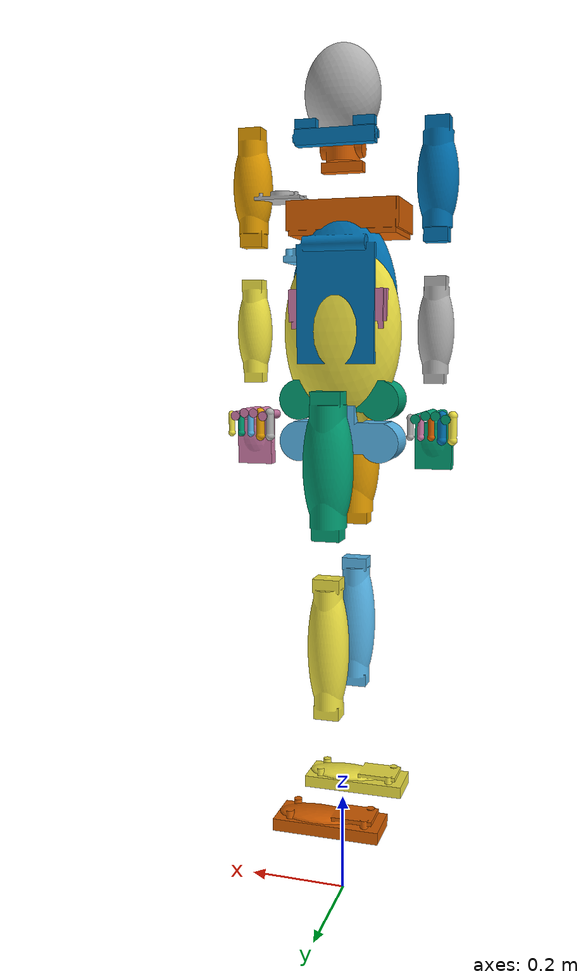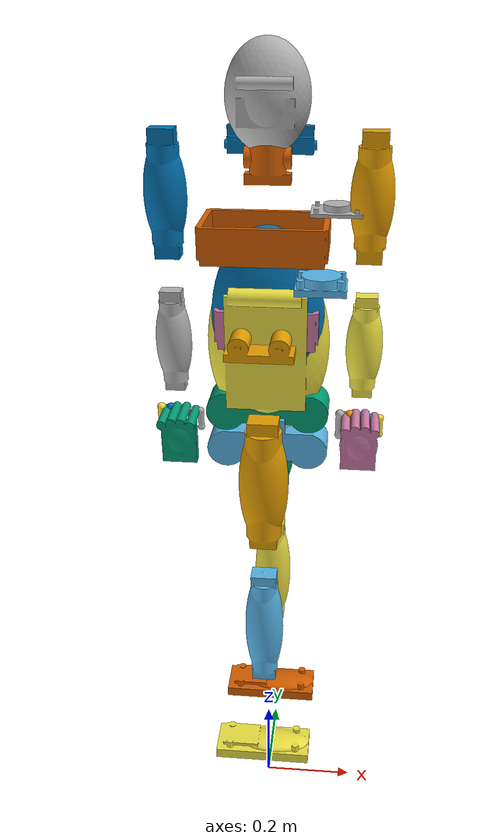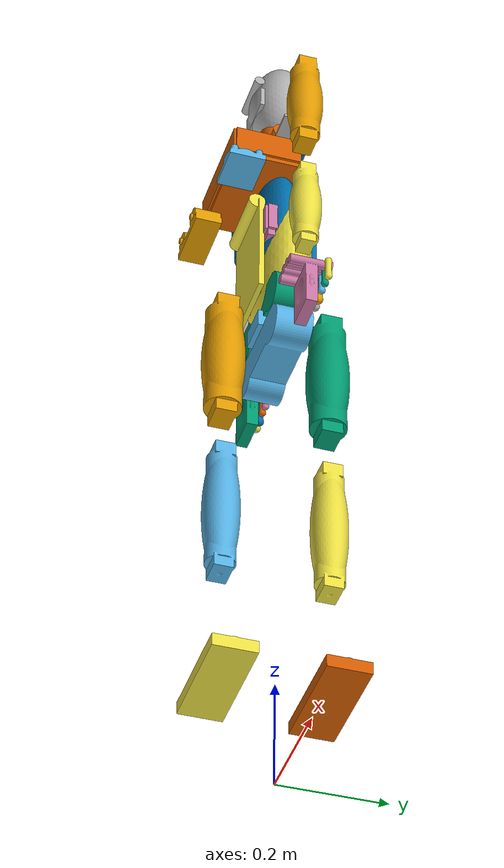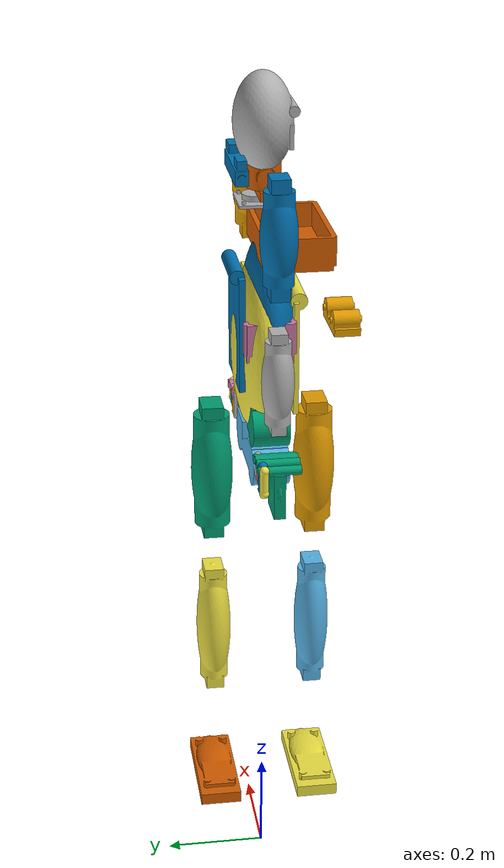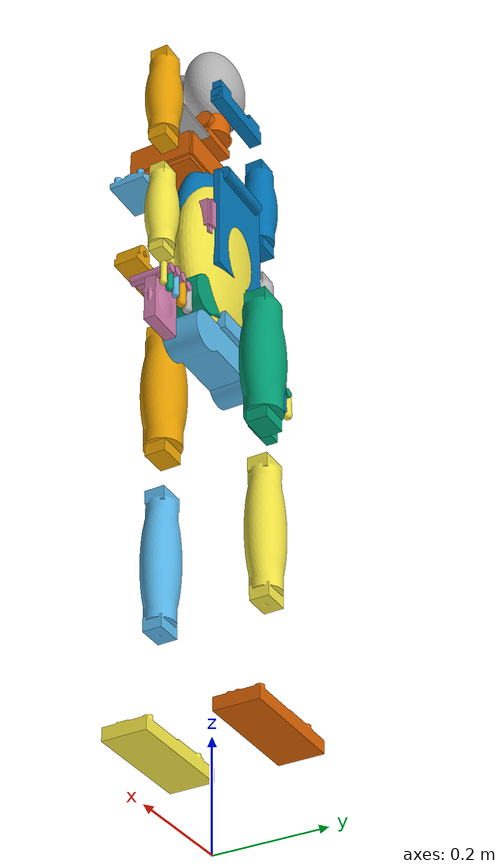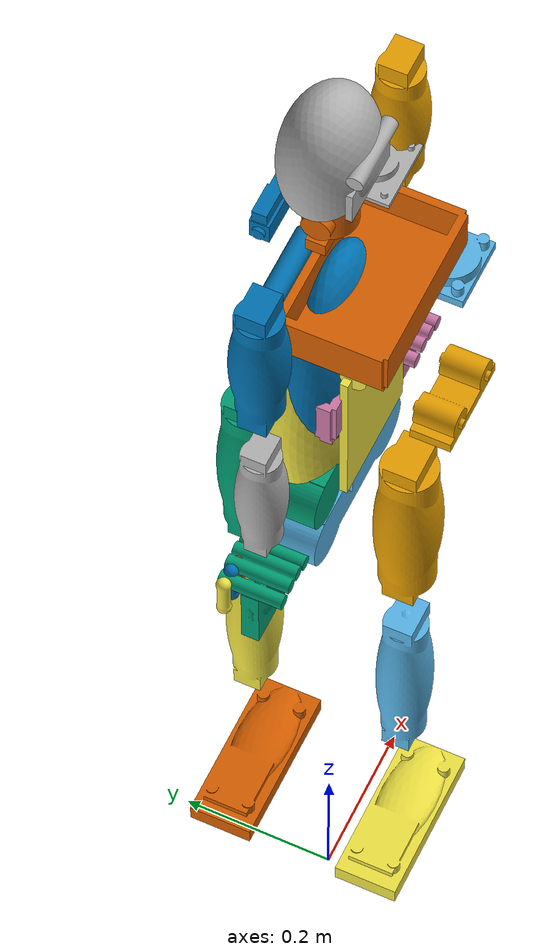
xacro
<?xml version="1.0"?>
<robot name="robotrola_r01" xmlns:xacro="http://www.ros.org/wiki/xacro">
  <xacro:property name="mesh_prefix" value="package://robotrola_description/meshes" />
  <!-- Robotrola R-01 full-body research description: 42 revolute DOF -->
  <!-- Inertial blocks are ESTIMATED (engineering placeholders), not measured hardware. -->
  <link name="base_link">
    <!-- ESTIMATED inertia (not measured hardware) -->
    <inertial>
      <origin xyz="0 0 0" rpy="0 0 0"/>
      <mass value="0.01"/>
      <inertia ixx="1e-05" ixy="0" ixz="0" iyy="1e-05" iyz="0" izz="1e-05"/>
    </inertial>
  </link>
  <link name="pelvis_link">
    <!-- ESTIMATED inertia (not measured hardware) -->
    <inertial>
      <origin xyz="0 0 0" rpy="0 0 0"/>
      <mass value="8.0"/>
      <inertia ixx="0.08" ixy="0" ixz="0" iyy="0.06" iyz="0" izz="0.05"/>
    </inertial>
    <visual><geometry><mesh filename="${mesh_prefix}/pelvis_frame.stl" scale="0.001 0.001 0.001"/></geometry></visual>
    <collision><geometry><box size="0.25 0.2 0.12"/></geometry></collision>
  </link>
  <joint name="base_to_pelvis" type="fixed">
    <parent link="base_link"/><child link="pelvis_link"/>
    <origin xyz="0 0 0.95" rpy="0 0 0"/>
  </joint>
  <link name="waist_link">
    <!-- ESTIMATED inertia (not measured hardware) -->
    <inertial>
      <origin xyz="0 0 0" rpy="0 0 0"/>
      <mass value="2.5"/>
      <inertia ixx="0.02" ixy="0" ixz="0" iyy="0.015" iyz="0" izz="0.012"/>
    </inertial>
    <visual><geometry><mesh filename="${mesh_prefix}/pelvis_frame.stl" scale="0.001 0.001 0.001"/></geometry></visual>
    <collision><geometry><cylinder radius="0.04" length="0.08"/></geometry></collision>
  </link>
  <joint name="waist_yaw" type="revolute">
    <parent link="pelvis_link"/><child link="waist_link"/>
    <origin xyz="0 0 0.08" rpy="0 0 0"/>
    <axis xyz="0 0 1"/>
    <limit lower="-0.6" upper="0.6" effort="2.0" velocity="0.2"/>
  </joint>
  <link name="torso_link">
    <!-- ESTIMATED inertia (not measured hardware) -->
    <inertial>
      <origin xyz="0 0 0" rpy="0 0 0"/>
      <mass value="6.0"/>
      <inertia ixx="0.1" ixy="0" ixz="0" iyy="0.08" iyz="0" izz="0.05"/>
    </inertial>
    <visual><geometry><mesh filename="${mesh_prefix}/torso_front_shell.stl" scale="0.001 0.001 0.001"/></geometry></visual>
    <collision><geometry><cylinder radius="0.04" length="0.08"/></geometry></collision>
  </link>
  <joint name="waist_pitch" type="revolute">
    <parent link="waist_link"/><child link="torso_link"/>
    <origin xyz="0 0 0.12" rpy="0 0 0"/>
    <axis xyz="0 1 0"/>
    <limit lower="-0.35" upper="0.45" effort="2.5" velocity="0.2"/>
  </joint>
  <link name="torso_roll_link">
    <!-- ESTIMATED inertia (not measured hardware) -->
    <inertial>
      <origin xyz="0 0 0" rpy="0 0 0"/>
      <mass value="6.0"/>
      <inertia ixx="0.1" ixy="0" ixz="0" iyy="0.08" iyz="0" izz="0.05"/>
    </inertial>
    <visual><geometry><mesh filename="${mesh_prefix}/torso_back_shell.stl" scale="0.001 0.001 0.001"/></geometry></visual>
    <collision><geometry><cylinder radius="0.04" length="0.08"/></geometry></collision>
  </link>
  <joint name="waist_roll" type="revolute">
    <parent link="torso_link"/><child link="torso_roll_link"/>
    <origin xyz="0 0 0.05" rpy="0 0 0"/>
    <axis xyz="1 0 0"/>
    <limit lower="-0.3" upper="0.3" effort="1.5" velocity="0.2"/>
  </joint>
  <link name="neck_yaw_link">
    <!-- ESTIMATED inertia (not measured hardware) -->
    <inertial>
      <origin xyz="0 0 0" rpy="0 0 0"/>
      <mass value="0.4"/>
      <inertia ixx="0.001" ixy="0" ixz="0" iyy="0.001" iyz="0" izz="0.0008"/>
    </inertial>
    <visual><geometry><mesh filename="${mesh_prefix}/neck_gimbal_mount.stl" scale="0.001 0.001 0.001"/></geometry></visual>
    <collision><geometry><cylinder radius="0.04" length="0.08"/></geometry></collision>
  </link>
  <joint name="neck_yaw" type="revolute">
    <parent link="torso_roll_link"/><child link="neck_yaw_link"/>
    <origin xyz="0 0 0.28" rpy="0 0 0"/>
    <axis xyz="0 0 1"/>
    <limit lower="-0.9" upper="0.9" effort="0.5" velocity="0.25"/>
  </joint>
  <link name="neck_pitch_link">
    <!-- ESTIMATED inertia (not measured hardware) -->
    <inertial>
      <origin xyz="0 0 0" rpy="0 0 0"/>
      <mass value="0.4"/>
      <inertia ixx="0.001" ixy="0" ixz="0" iyy="0.001" iyz="0" izz="0.0008"/>
    </inertial>
  </link>
  <joint name="neck_pitch" type="revolute">
    <parent link="neck_yaw_link"/><child link="neck_pitch_link"/>
    <origin xyz="0 0 0.04" rpy="0 0 0"/>
    <axis xyz="0 1 0"/>
    <limit lower="-0.5" upper="0.6" effort="0.5" velocity="0.25"/>
  </joint>
  <link name="head_link">
    <!-- ESTIMATED inertia (not measured hardware) -->
    <inertial>
      <origin xyz="0 0 0" rpy="0 0 0"/>
      <mass value="1.2"/>
      <inertia ixx="0.008" ixy="0" ixz="0" iyy="0.008" iyz="0" izz="0.006"/>
    </inertial>
    <visual><geometry><mesh filename="${mesh_prefix}/head_shell_front.stl" scale="0.001 0.001 0.001"/></geometry></visual>
    <collision><geometry><cylinder radius="0.04" length="0.08"/></geometry></collision>
  </link>
  <joint name="neck_roll" type="revolute">
    <parent link="neck_pitch_link"/><child link="head_link"/>
    <origin xyz="0 0 0.06" rpy="0 0 0"/>
    <axis xyz="1 0 0"/>
    <limit lower="-0.35" upper="0.35" effort="0.4" velocity="0.2"/>
  </joint>
  <link name="left_shoulder_pitch_link">
    <!-- ESTIMATED inertia (not measured hardware) -->
    <inertial>
      <origin xyz="0 0 0" rpy="0 0 0"/>
      <mass value="1.8"/>
      <inertia ixx="0.012" ixy="0" ixz="0" iyy="0.012" iyz="0" izz="0.004"/>
    </inertial>
    <visual><geometry><mesh filename="${mesh_prefix}/upper_arm_shell.stl" scale="0.001 0.001 0.001"/></geometry></visual>
    <collision><geometry><cylinder radius="0.04" length="0.08"/></geometry></collision>
  </link>
  <joint name="left_shoulder_pitch" type="revolute">
    <parent link="torso_roll_link"/><child link="left_shoulder_pitch_link"/>
    <origin xyz="0.18 0 0.22" rpy="0 0 0"/>
    <axis xyz="0 1 0"/>
    <limit lower="-1.4" upper="1.4" effort="1.5" velocity="0.25"/>
  </joint>
  <link name="left_shoulder_roll_link">
    <!-- ESTIMATED inertia (not measured hardware) -->
    <inertial>
      <origin xyz="0 0 0" rpy="0 0 0"/>
      <mass value="1.8"/>
      <inertia ixx="0.012" ixy="0" ixz="0" iyy="0.012" iyz="0" izz="0.004"/>
    </inertial>
  </link>
  <joint name="left_shoulder_roll" type="revolute">
    <parent link="left_shoulder_pitch_link"/><child link="left_shoulder_roll_link"/>
    <origin xyz="0 0 0" rpy="0 0 0"/>
    <axis xyz="1 0 0"/>
    <limit lower="-0.3" upper="1.5" effort="1.2" velocity="0.25"/>
  </joint>
  <link name="left_upper_arm_link">
    <!-- ESTIMATED inertia (not measured hardware) -->
    <inertial>
      <origin xyz="0 0 0" rpy="0 0 0"/>
      <mass value="1.8"/>
      <inertia ixx="0.012" ixy="0" ixz="0" iyy="0.012" iyz="0" izz="0.004"/>
    </inertial>
  </link>
  <joint name="left_shoulder_yaw" type="revolute">
    <parent link="left_shoulder_roll_link"/><child link="left_upper_arm_link"/>
    <origin xyz="0 0 -0.05" rpy="0 0 0"/>
    <axis xyz="0 0 1"/>
    <limit lower="-1.2" upper="1.2" effort="1.0" velocity="0.3"/>
  </joint>
  <link name="left_forearm_link">
    <!-- ESTIMATED inertia (not measured hardware) -->
    <inertial>
      <origin xyz="0 0 0" rpy="0 0 0"/>
      <mass value="1.0"/>
      <inertia ixx="0.006" ixy="0" ixz="0" iyy="0.006" iyz="0" izz="0.002"/>
    </inertial>
    <visual><geometry><mesh filename="${mesh_prefix}/forearm_shell.stl" scale="0.001 0.001 0.001"/></geometry></visual>
    <collision><geometry><cylinder radius="0.04" length="0.08"/></geometry></collision>
  </link>
  <joint name="left_elbow" type="revolute">
    <parent link="left_upper_arm_link"/><child link="left_forearm_link"/>
    <origin xyz="0 0 -0.22" rpy="0 0 0"/>
    <axis xyz="0 1 0"/>
    <limit lower="0.0" upper="2.2" effort="1.0" velocity="0.3"/>
  </joint>
  <link name="left_wrist_yaw_link">
    <!-- ESTIMATED inertia (not measured hardware) -->
    <inertial>
      <origin xyz="0 0 0" rpy="0 0 0"/>
      <mass value="0.25"/>
      <inertia ixx="0.0004" ixy="0" ixz="0" iyy="0.0004" iyz="0" izz="0.0002"/>
    </inertial>
  </link>
  <joint name="left_wrist_yaw" type="revolute">
    <parent link="left_forearm_link"/><child link="left_wrist_yaw_link"/>
    <origin xyz="0 0 -0.2" rpy="0 0 0"/>
    <axis xyz="0 0 1"/>
    <limit lower="-1.4" upper="1.4" effort="0.4" velocity="0.4"/>
  </joint>
  <link name="left_wrist_pitch_link">
    <!-- ESTIMATED inertia (not measured hardware) -->
    <inertial>
      <origin xyz="0 0 0" rpy="0 0 0"/>
      <mass value="0.25"/>
      <inertia ixx="0.0004" ixy="0" ixz="0" iyy="0.0004" iyz="0" izz="0.0002"/>
    </inertial>
  </link>
  <joint name="left_wrist_pitch" type="revolute">
    <parent link="left_wrist_yaw_link"/><child link="left_wrist_pitch_link"/>
    <origin xyz="0 0 0" rpy="0 0 0"/>
    <axis xyz="0 1 0"/>
    <limit lower="-0.9" upper="0.9" effort="0.4" velocity="0.4"/>
  </joint>
  <link name="left_hand_link">
    <!-- ESTIMATED inertia (not measured hardware) -->
    <inertial>
      <origin xyz="0 0 0" rpy="0 0 0"/>
      <mass value="0.35"/>
      <inertia ixx="0.0008" ixy="0" ixz="0" iyy="0.0008" iyz="0" izz="0.0004"/>
    </inertial>
    <visual><geometry><mesh filename="${mesh_prefix}/hand_palm.stl" scale="0.001 0.001 0.001"/></geometry></visual>
    <collision><geometry><cylinder radius="0.04" length="0.08"/></geometry></collision>
  </link>
  <joint name="left_wrist_roll" type="revolute">
    <parent link="left_wrist_pitch_link"/><child link="left_hand_link"/>
    <origin xyz="0 0 0" rpy="0 0 0"/>
    <axis xyz="1 0 0"/>
    <limit lower="-0.9" upper="0.9" effort="0.3" velocity="0.4"/>
  </joint>
  <link name="left_thumb_link">
    <!-- ESTIMATED inertia (not measured hardware) -->
    <inertial>
      <origin xyz="0 0 0" rpy="0 0 0"/>
      <mass value="0.05"/>
      <inertia ixx="5e-05" ixy="0" ixz="0" iyy="5e-05" iyz="0" izz="2e-05"/>
    </inertial>
    <visual><geometry><mesh filename="${mesh_prefix}/finger_phalanx_proximal.stl" scale="0.001 0.001 0.001"/></geometry></visual>
    <collision><geometry><cylinder radius="0.04" length="0.08"/></geometry></collision>
  </link>
  <joint name="left_thumb_curl" type="revolute">
    <parent link="left_hand_link"/><child link="left_thumb_link"/>
    <origin xyz="-0.04 0.03 0.02" rpy="0 0 0"/>
    <axis xyz="0 1 0"/>
    <limit lower="0.0" upper="1.4" effort="0.15" velocity="0.5"/>
  </joint>
  <link name="left_index_link">
    <!-- ESTIMATED inertia (not measured hardware) -->
    <inertial>
      <origin xyz="0 0 0" rpy="0 0 0"/>
      <mass value="0.05"/>
      <inertia ixx="5e-05" ixy="0" ixz="0" iyy="5e-05" iyz="0" izz="2e-05"/>
    </inertial>
    <visual><geometry><mesh filename="${mesh_prefix}/finger_phalanx_proximal.stl" scale="0.001 0.001 0.001"/></geometry></visual>
    <collision><geometry><cylinder radius="0.04" length="0.08"/></geometry></collision>
  </link>
  <joint name="left_index_curl" type="revolute">
    <parent link="left_hand_link"/><child link="left_index_link"/>
    <origin xyz="-0.02 0.03 0.02" rpy="0 0 0"/>
    <axis xyz="0 1 0"/>
    <limit lower="0.0" upper="1.4" effort="0.15" velocity="0.5"/>
  </joint>
  <link name="left_middle_link">
    <!-- ESTIMATED inertia (not measured hardware) -->
    <inertial>
      <origin xyz="0 0 0" rpy="0 0 0"/>
      <mass value="0.05"/>
      <inertia ixx="5e-05" ixy="0" ixz="0" iyy="5e-05" iyz="0" izz="2e-05"/>
    </inertial>
    <visual><geometry><mesh filename="${mesh_prefix}/finger_phalanx_distal.stl" scale="0.001 0.001 0.001"/></geometry></visual>
    <collision><geometry><cylinder radius="0.04" length="0.08"/></geometry></collision>
  </link>
  <joint name="left_middle_curl" type="revolute">
    <parent link="left_hand_link"/><child link="left_middle_link"/>
    <origin xyz="0.0 0.03 0.02" rpy="0 0 0"/>
    <axis xyz="0 1 0"/>
    <limit lower="0.0" upper="1.4" effort="0.15" velocity="0.5"/>
  </joint>
  <link name="left_ring_link">
    <!-- ESTIMATED inertia (not measured hardware) -->
    <inertial>
      <origin xyz="0 0 0" rpy="0 0 0"/>
      <mass value="0.05"/>
      <inertia ixx="5e-05" ixy="0" ixz="0" iyy="5e-05" iyz="0" izz="2e-05"/>
    </inertial>
    <visual><geometry><mesh filename="${mesh_prefix}/finger_phalanx_distal.stl" scale="0.001 0.001 0.001"/></geometry></visual>
    <collision><geometry><cylinder radius="0.04" length="0.08"/></geometry></collision>
  </link>
  <joint name="left_ring_curl" type="revolute">
    <parent link="left_hand_link"/><child link="left_ring_link"/>
    <origin xyz="0.02 0.03 0.02" rpy="0 0 0"/>
    <axis xyz="0 1 0"/>
    <limit lower="0.0" upper="1.4" effort="0.15" velocity="0.5"/>
  </joint>
  <link name="left_pinky_link">
    <!-- ESTIMATED inertia (not measured hardware) -->
    <inertial>
      <origin xyz="0 0 0" rpy="0 0 0"/>
      <mass value="0.05"/>
      <inertia ixx="5e-05" ixy="0" ixz="0" iyy="5e-05" iyz="0" izz="2e-05"/>
    </inertial>
    <visual><geometry><mesh filename="${mesh_prefix}/finger_phalanx_distal.stl" scale="0.001 0.001 0.001"/></geometry></visual>
    <collision><geometry><cylinder radius="0.04" length="0.08"/></geometry></collision>
  </link>
  <joint name="left_pinky_curl" type="revolute">
    <parent link="left_hand_link"/><child link="left_pinky_link"/>
    <origin xyz="0.04 0.03 0.02" rpy="0 0 0"/>
    <axis xyz="0 1 0"/>
    <limit lower="0.0" upper="1.4" effort="0.15" velocity="0.5"/>
  </joint>
  <link name="right_shoulder_pitch_link">
    <!-- ESTIMATED inertia (not measured hardware) -->
    <inertial>
      <origin xyz="0 0 0" rpy="0 0 0"/>
      <mass value="1.8"/>
      <inertia ixx="0.012" ixy="0" ixz="0" iyy="0.012" iyz="0" izz="0.004"/>
    </inertial>
    <visual><geometry><mesh filename="${mesh_prefix}/upper_arm_shell.stl" scale="0.001 0.001 0.001"/></geometry></visual>
    <collision><geometry><cylinder radius="0.04" length="0.08"/></geometry></collision>
  </link>
  <joint name="right_shoulder_pitch" type="revolute">
    <parent link="torso_roll_link"/><child link="right_shoulder_pitch_link"/>
    <origin xyz="-0.18 0 0.22" rpy="0 0 0"/>
    <axis xyz="0 1 0"/>
    <limit lower="-1.4" upper="1.4" effort="1.5" velocity="0.25"/>
  </joint>
  <link name="right_shoulder_roll_link">
    <!-- ESTIMATED inertia (not measured hardware) -->
    <inertial>
      <origin xyz="0 0 0" rpy="0 0 0"/>
      <mass value="1.8"/>
      <inertia ixx="0.012" ixy="0" ixz="0" iyy="0.012" iyz="0" izz="0.004"/>
    </inertial>
  </link>
  <joint name="right_shoulder_roll" type="revolute">
    <parent link="right_shoulder_pitch_link"/><child link="right_shoulder_roll_link"/>
    <origin xyz="0 0 0" rpy="0 0 0"/>
    <axis xyz="1 0 0"/>
    <limit lower="-1.5" upper="0.3" effort="1.2" velocity="0.25"/>
  </joint>
  <link name="right_upper_arm_link">
    <!-- ESTIMATED inertia (not measured hardware) -->
    <inertial>
      <origin xyz="0 0 0" rpy="0 0 0"/>
      <mass value="1.8"/>
      <inertia ixx="0.012" ixy="0" ixz="0" iyy="0.012" iyz="0" izz="0.004"/>
    </inertial>
  </link>
  <joint name="right_shoulder_yaw" type="revolute">
    <parent link="right_shoulder_roll_link"/><child link="right_upper_arm_link"/>
    <origin xyz="0 0 -0.05" rpy="0 0 0"/>
    <axis xyz="0 0 1"/>
    <limit lower="-1.2" upper="1.2" effort="1.0" velocity="0.3"/>
  </joint>
  <link name="right_forearm_link">
    <!-- ESTIMATED inertia (not measured hardware) -->
    <inertial>
      <origin xyz="0 0 0" rpy="0 0 0"/>
      <mass value="1.0"/>
      <inertia ixx="0.006" ixy="0" ixz="0" iyy="0.006" iyz="0" izz="0.002"/>
    </inertial>
    <visual><geometry><mesh filename="${mesh_prefix}/forearm_shell.stl" scale="0.001 0.001 0.001"/></geometry></visual>
    <collision><geometry><cylinder radius="0.04" length="0.08"/></geometry></collision>
  </link>
  <joint name="right_elbow" type="revolute">
    <parent link="right_upper_arm_link"/><child link="right_forearm_link"/>
    <origin xyz="0 0 -0.22" rpy="0 0 0"/>
    <axis xyz="0 1 0"/>
    <limit lower="0.0" upper="2.2" effort="1.0" velocity="0.3"/>
  </joint>
  <link name="right_wrist_yaw_link">
    <!-- ESTIMATED inertia (not measured hardware) -->
    <inertial>
      <origin xyz="0 0 0" rpy="0 0 0"/>
      <mass value="0.25"/>
      <inertia ixx="0.0004" ixy="0" ixz="0" iyy="0.0004" iyz="0" izz="0.0002"/>
    </inertial>
  </link>
  <joint name="right_wrist_yaw" type="revolute">
    <parent link="right_forearm_link"/><child link="right_wrist_yaw_link"/>
    <origin xyz="0 0 -0.2" rpy="0 0 0"/>
    <axis xyz="0 0 1"/>
    <limit lower="-1.4" upper="1.4" effort="0.4" velocity="0.4"/>
  </joint>
  <link name="right_wrist_pitch_link">
    <!-- ESTIMATED inertia (not measured hardware) -->
    <inertial>
      <origin xyz="0 0 0" rpy="0 0 0"/>
      <mass value="0.25"/>
      <inertia ixx="0.0004" ixy="0" ixz="0" iyy="0.0004" iyz="0" izz="0.0002"/>
    </inertial>
  </link>
  <joint name="right_wrist_pitch" type="revolute">
    <parent link="right_wrist_yaw_link"/><child link="right_wrist_pitch_link"/>
    <origin xyz="0 0 0" rpy="0 0 0"/>
    <axis xyz="0 1 0"/>
    <limit lower="-0.9" upper="0.9" effort="0.4" velocity="0.4"/>
  </joint>
  <link name="right_hand_link">
    <!-- ESTIMATED inertia (not measured hardware) -->
    <inertial>
      <origin xyz="0 0 0" rpy="0 0 0"/>
      <mass value="0.35"/>
      <inertia ixx="0.0008" ixy="0" ixz="0" iyy="0.0008" iyz="0" izz="0.0004"/>
    </inertial>
    <visual><geometry><mesh filename="${mesh_prefix}/hand_palm.stl" scale="0.001 0.001 0.001"/></geometry></visual>
    <collision><geometry><cylinder radius="0.04" length="0.08"/></geometry></collision>
  </link>
  <joint name="right_wrist_roll" type="revolute">
    <parent link="right_wrist_pitch_link"/><child link="right_hand_link"/>
    <origin xyz="0 0 0" rpy="0 0 0"/>
    <axis xyz="1 0 0"/>
    <limit lower="-0.9" upper="0.9" effort="0.3" velocity="0.4"/>
  </joint>
  <link name="right_thumb_link">
    <!-- ESTIMATED inertia (not measured hardware) -->
    <inertial>
      <origin xyz="0 0 0" rpy="0 0 0"/>
      <mass value="0.05"/>
      <inertia ixx="5e-05" ixy="0" ixz="0" iyy="5e-05" iyz="0" izz="2e-05"/>
    </inertial>
    <visual><geometry><mesh filename="${mesh_prefix}/finger_phalanx_proximal.stl" scale="0.001 0.001 0.001"/></geometry></visual>
    <collision><geometry><cylinder radius="0.04" length="0.08"/></geometry></collision>
  </link>
  <joint name="right_thumb_curl" type="revolute">
    <parent link="right_hand_link"/><child link="right_thumb_link"/>
    <origin xyz="-0.04 0.03 0.02" rpy="0 0 0"/>
    <axis xyz="0 1 0"/>
    <limit lower="0.0" upper="1.4" effort="0.15" velocity="0.5"/>
  </joint>
  <link name="right_index_link">
    <!-- ESTIMATED inertia (not measured hardware) -->
    <inertial>
      <origin xyz="0 0 0" rpy="0 0 0"/>
      <mass value="0.05"/>
      <inertia ixx="5e-05" ixy="0" ixz="0" iyy="5e-05" iyz="0" izz="2e-05"/>
    </inertial>
    <visual><geometry><mesh filename="${mesh_prefix}/finger_phalanx_proximal.stl" scale="0.001 0.001 0.001"/></geometry></visual>
    <collision><geometry><cylinder radius="0.04" length="0.08"/></geometry></collision>
  </link>
  <joint name="right_index_curl" type="revolute">
    <parent link="right_hand_link"/><child link="right_index_link"/>
    <origin xyz="-0.02 0.03 0.02" rpy="0 0 0"/>
    <axis xyz="0 1 0"/>
    <limit lower="0.0" upper="1.4" effort="0.15" velocity="0.5"/>
  </joint>
  <link name="right_middle_link">
    <!-- ESTIMATED inertia (not measured hardware) -->
    <inertial>
      <origin xyz="0 0 0" rpy="0 0 0"/>
      <mass value="0.05"/>
      <inertia ixx="5e-05" ixy="0" ixz="0" iyy="5e-05" iyz="0" izz="2e-05"/>
    </inertial>
    <visual><geometry><mesh filename="${mesh_prefix}/finger_phalanx_distal.stl" scale="0.001 0.001 0.001"/></geometry></visual>
    <collision><geometry><cylinder radius="0.04" length="0.08"/></geometry></collision>
  </link>
  <joint name="right_middle_curl" type="revolute">
    <parent link="right_hand_link"/><child link="right_middle_link"/>
    <origin xyz="0.0 0.03 0.02" rpy="0 0 0"/>
    <axis xyz="0 1 0"/>
    <limit lower="0.0" upper="1.4" effort="0.15" velocity="0.5"/>
  </joint>
  <link name="right_ring_link">
    <!-- ESTIMATED inertia (not measured hardware) -->
    <inertial>
      <origin xyz="0 0 0" rpy="0 0 0"/>
      <mass value="0.05"/>
      <inertia ixx="5e-05" ixy="0" ixz="0" iyy="5e-05" iyz="0" izz="2e-05"/>
    </inertial>
    <visual><geometry><mesh filename="${mesh_prefix}/finger_phalanx_distal.stl" scale="0.001 0.001 0.001"/></geometry></visual>
    <collision><geometry><cylinder radius="0.04" length="0.08"/></geometry></collision>
  </link>
  <joint name="right_ring_curl" type="revolute">
    <parent link="right_hand_link"/><child link="right_ring_link"/>
    <origin xyz="0.02 0.03 0.02" rpy="0 0 0"/>
    <axis xyz="0 1 0"/>
    <limit lower="0.0" upper="1.4" effort="0.15" velocity="0.5"/>
  </joint>
  <link name="right_pinky_link">
    <!-- ESTIMATED inertia (not measured hardware) -->
    <inertial>
      <origin xyz="0 0 0" rpy="0 0 0"/>
      <mass value="0.05"/>
      <inertia ixx="5e-05" ixy="0" ixz="0" iyy="5e-05" iyz="0" izz="2e-05"/>
    </inertial>
    <visual><geometry><mesh filename="${mesh_prefix}/finger_phalanx_distal.stl" scale="0.001 0.001 0.001"/></geometry></visual>
    <collision><geometry><cylinder radius="0.04" length="0.08"/></geometry></collision>
  </link>
  <joint name="right_pinky_curl" type="revolute">
    <parent link="right_hand_link"/><child link="right_pinky_link"/>
    <origin xyz="0.04 0.03 0.02" rpy="0 0 0"/>
    <axis xyz="0 1 0"/>
    <limit lower="0.0" upper="1.4" effort="0.15" velocity="0.5"/>
  </joint>
  <link name="left_hip_yaw_link">
    <!-- ESTIMATED inertia (not measured hardware) -->
    <inertial>
      <origin xyz="0 0 0" rpy="0 0 0"/>
      <mass value="1.5"/>
      <inertia ixx="0.01" ixy="0" ixz="0" iyy="0.01" iyz="0" izz="0.005"/>
    </inertial>
  </link>
  <joint name="left_hip_yaw" type="revolute">
    <parent link="pelvis_link"/><child link="left_hip_yaw_link"/>
    <origin xyz="0 0.1 -0.05" rpy="0 0 0"/>
    <axis xyz="0 0 1"/>
    <limit lower="-0.6" upper="0.6" effort="2.0" velocity="0.25"/>
  </joint>
  <link name="left_hip_roll_link">
    <!-- ESTIMATED inertia (not measured hardware) -->
    <inertial>
      <origin xyz="0 0 0" rpy="0 0 0"/>
      <mass value="1.5"/>
      <inertia ixx="0.01" ixy="0" ixz="0" iyy="0.01" iyz="0" izz="0.005"/>
    </inertial>
  </link>
  <joint name="left_hip_roll" type="revolute">
    <parent link="left_hip_yaw_link"/><child link="left_hip_roll_link"/>
    <origin xyz="0 0 0" rpy="0 0 0"/>
    <axis xyz="1 0 0"/>
    <limit lower="-0.4" upper="0.4" effort="2.0" velocity="0.25"/>
  </joint>
  <link name="left_thigh_link">
    <!-- ESTIMATED inertia (not measured hardware) -->
    <inertial>
      <origin xyz="0 0 0" rpy="0 0 0"/>
      <mass value="4.0"/>
      <inertia ixx="0.04" ixy="0" ixz="0" iyy="0.04" iyz="0" izz="0.01"/>
    </inertial>
    <visual><geometry><mesh filename="${mesh_prefix}/thigh_shell.stl" scale="0.001 0.001 0.001"/></geometry></visual>
    <collision><geometry><cylinder radius="0.04" length="0.08"/></geometry></collision>
  </link>
  <joint name="left_hip_pitch" type="revolute">
    <parent link="left_hip_roll_link"/><child link="left_thigh_link"/>
    <origin xyz="0 0 0" rpy="0 0 0"/>
    <axis xyz="0 1 0"/>
    <limit lower="-1.4" upper="0.8" effort="3.0" velocity="0.25"/>
  </joint>
  <link name="left_shin_link">
    <!-- ESTIMATED inertia (not measured hardware) -->
    <inertial>
      <origin xyz="0 0 0" rpy="0 0 0"/>
      <mass value="2.5"/>
      <inertia ixx="0.02" ixy="0" ixz="0" iyy="0.02" iyz="0" izz="0.006"/>
    </inertial>
    <visual><geometry><mesh filename="${mesh_prefix}/shin_shell.stl" scale="0.001 0.001 0.001"/></geometry></visual>
    <collision><geometry><cylinder radius="0.04" length="0.08"/></geometry></collision>
  </link>
  <joint name="left_knee" type="revolute">
    <parent link="left_thigh_link"/><child link="left_shin_link"/>
    <origin xyz="0 0 -0.35" rpy="0 0 0"/>
    <axis xyz="0 1 0"/>
    <limit lower="0.0" upper="2.2" effort="3.0" velocity="0.3"/>
  </joint>
  <link name="left_ankle_pitch_link">
    <!-- ESTIMATED inertia (not measured hardware) -->
    <inertial>
      <origin xyz="0 0 0" rpy="0 0 0"/>
      <mass value="0.4"/>
      <inertia ixx="0.001" ixy="0" ixz="0" iyy="0.001" iyz="0" izz="0.0005"/>
    </inertial>
  </link>
  <joint name="left_ankle_pitch" type="revolute">
    <parent link="left_shin_link"/><child link="left_ankle_pitch_link"/>
    <origin xyz="0 0 -0.35" rpy="0 0 0"/>
    <axis xyz="0 1 0"/>
    <limit lower="-0.7" upper="0.7" effort="1.5" velocity="0.3"/>
  </joint>
  <link name="left_foot_link">
    <!-- ESTIMATED inertia (not measured hardware) -->
    <inertial>
      <origin xyz="0 0 0" rpy="0 0 0"/>
      <mass value="0.8"/>
      <inertia ixx="0.004" ixy="0" ixz="0" iyy="0.004" iyz="0" izz="0.001"/>
    </inertial>
    <visual><geometry><mesh filename="${mesh_prefix}/foot_sole_force_sensor_mount.stl" scale="0.001 0.001 0.001"/></geometry></visual>
    <collision><geometry><cylinder radius="0.04" length="0.08"/></geometry></collision>
  </link>
  <joint name="left_ankle_roll" type="revolute">
    <parent link="left_ankle_pitch_link"/><child link="left_foot_link"/>
    <origin xyz="0 0 0" rpy="0 0 0"/>
    <axis xyz="1 0 0"/>
    <limit lower="-0.4" upper="0.4" effort="1.0" velocity="0.3"/>
  </joint>
  <link name="right_hip_yaw_link">
    <!-- ESTIMATED inertia (not measured hardware) -->
    <inertial>
      <origin xyz="0 0 0" rpy="0 0 0"/>
      <mass value="1.5"/>
      <inertia ixx="0.01" ixy="0" ixz="0" iyy="0.01" iyz="0" izz="0.005"/>
    </inertial>
  </link>
  <joint name="right_hip_yaw" type="revolute">
    <parent link="pelvis_link"/><child link="right_hip_yaw_link"/>
    <origin xyz="0 -0.1 -0.05" rpy="0 0 0"/>
    <axis xyz="0 0 1"/>
    <limit lower="-0.6" upper="0.6" effort="2.0" velocity="0.25"/>
  </joint>
  <link name="right_hip_roll_link">
    <!-- ESTIMATED inertia (not measured hardware) -->
    <inertial>
      <origin xyz="0 0 0" rpy="0 0 0"/>
      <mass value="1.5"/>
      <inertia ixx="0.01" ixy="0" ixz="0" iyy="0.01" iyz="0" izz="0.005"/>
    </inertial>
  </link>
  <joint name="right_hip_roll" type="revolute">
    <parent link="right_hip_yaw_link"/><child link="right_hip_roll_link"/>
    <origin xyz="0 0 0" rpy="0 0 0"/>
    <axis xyz="1 0 0"/>
    <limit lower="-0.4" upper="0.4" effort="2.0" velocity="0.25"/>
  </joint>
  <link name="right_thigh_link">
    <!-- ESTIMATED inertia (not measured hardware) -->
    <inertial>
      <origin xyz="0 0 0" rpy="0 0 0"/>
      <mass value="4.0"/>
      <inertia ixx="0.04" ixy="0" ixz="0" iyy="0.04" iyz="0" izz="0.01"/>
    </inertial>
    <visual><geometry><mesh filename="${mesh_prefix}/thigh_shell.stl" scale="0.001 0.001 0.001"/></geometry></visual>
    <collision><geometry><cylinder radius="0.04" length="0.08"/></geometry></collision>
  </link>
  <joint name="right_hip_pitch" type="revolute">
    <parent link="right_hip_roll_link"/><child link="right_thigh_link"/>
    <origin xyz="0 0 0" rpy="0 0 0"/>
    <axis xyz="0 1 0"/>
    <limit lower="-1.4" upper="0.8" effort="3.0" velocity="0.25"/>
  </joint>
  <link name="right_shin_link">
    <!-- ESTIMATED inertia (not measured hardware) -->
    <inertial>
      <origin xyz="0 0 0" rpy="0 0 0"/>
      <mass value="2.5"/>
      <inertia ixx="0.02" ixy="0" ixz="0" iyy="0.02" iyz="0" izz="0.006"/>
    </inertial>
    <visual><geometry><mesh filename="${mesh_prefix}/shin_shell.stl" scale="0.001 0.001 0.001"/></geometry></visual>
    <collision><geometry><cylinder radius="0.04" length="0.08"/></geometry></collision>
  </link>
  <joint name="right_knee" type="revolute">
    <parent link="right_thigh_link"/><child link="right_shin_link"/>
    <origin xyz="0 0 -0.35" rpy="0 0 0"/>
    <axis xyz="0 1 0"/>
    <limit lower="0.0" upper="2.2" effort="3.0" velocity="0.3"/>
  </joint>
  <link name="right_ankle_pitch_link">
    <!-- ESTIMATED inertia (not measured hardware) -->
    <inertial>
      <origin xyz="0 0 0" rpy="0 0 0"/>
      <mass value="0.4"/>
      <inertia ixx="0.001" ixy="0" ixz="0" iyy="0.001" iyz="0" izz="0.0005"/>
    </inertial>
  </link>
  <joint name="right_ankle_pitch" type="revolute">
    <parent link="right_shin_link"/><child link="right_ankle_pitch_link"/>
    <origin xyz="0 0 -0.35" rpy="0 0 0"/>
    <axis xyz="0 1 0"/>
    <limit lower="-0.7" upper="0.7" effort="1.5" velocity="0.3"/>
  </joint>
  <link name="right_foot_link">
    <!-- ESTIMATED inertia (not measured hardware) -->
    <inertial>
      <origin xyz="0 0 0" rpy="0 0 0"/>
      <mass value="0.8"/>
      <inertia ixx="0.004" ixy="0" ixz="0" iyy="0.004" iyz="0" izz="0.001"/>
    </inertial>
    <visual><geometry><mesh filename="${mesh_prefix}/foot_sole_force_sensor_mount.stl" scale="0.001 0.001 0.001"/></geometry></visual>
    <collision><geometry><cylinder radius="0.04" length="0.08"/></geometry></collision>
  </link>
  <joint name="right_ankle_roll" type="revolute">
    <parent link="right_ankle_pitch_link"/><child link="right_foot_link"/>
    <origin xyz="0 0 0" rpy="0 0 0"/>
    <axis xyz="1 0 0"/>
    <limit lower="-0.4" upper="0.4" effort="1.0" velocity="0.3"/>
  </joint>
  <link name="camera_bar_link">
    <!-- ESTIMATED inertia (not measured hardware) -->
    <inertial>
      <origin xyz="0 0 0" rpy="0 0 0"/>
      <mass value="0.3"/>
      <inertia ixx="0.001" ixy="0" ixz="0" iyy="0.001" iyz="0" izz="0.001"/>
    </inertial>
    <visual><geometry><mesh filename="${mesh_prefix}/camera_bar_mount.stl" scale="0.001 0.001 0.001"/></geometry></visual>
    <collision><geometry><cylinder radius="0.04" length="0.08"/></geometry></collision>
  </link>
  <joint name="fixed_camera_bar_link" type="fixed">
    <parent link="torso_roll_link"/><child link="camera_bar_link"/>
    <origin xyz="0 0.05 0.3" rpy="0 0 0"/>
  </joint>
  <link name="electronics_tray_link">
    <!-- ESTIMATED inertia (not measured hardware) -->
    <inertial>
      <origin xyz="0 0 0" rpy="0 0 0"/>
      <mass value="0.3"/>
      <inertia ixx="0.001" ixy="0" ixz="0" iyy="0.001" iyz="0" izz="0.001"/>
    </inertial>
    <visual><geometry><mesh filename="${mesh_prefix}/electronics_tray.stl" scale="0.001 0.001 0.001"/></geometry></visual>
    <collision><geometry><cylinder radius="0.04" length="0.08"/></geometry></collision>
  </link>
  <joint name="fixed_electronics_tray_link" type="fixed">
    <parent link="torso_roll_link"/><child link="electronics_tray_link"/>
    <origin xyz="0 -0.05 0.15" rpy="0 0 0"/>
  </joint>
  <link name="battery_cradle_link">
    <!-- ESTIMATED inertia (not measured hardware) -->
    <inertial>
      <origin xyz="0 0 0" rpy="0 0 0"/>
      <mass value="0.3"/>
      <inertia ixx="0.001" ixy="0" ixz="0" iyy="0.001" iyz="0" izz="0.001"/>
    </inertial>
    <visual><geometry><mesh filename="${mesh_prefix}/battery_cradle.stl" scale="0.001 0.001 0.001"/></geometry></visual>
    <collision><geometry><cylinder radius="0.04" length="0.08"/></geometry></collision>
  </link>
  <joint name="fixed_battery_cradle_link" type="fixed">
    <parent link="torso_roll_link"/><child link="battery_cradle_link"/>
    <origin xyz="0 0 -0.02" rpy="0 0 0"/>
  </joint>
  <link name="estop_plate_link">
    <!-- ESTIMATED inertia (not measured hardware) -->
    <inertial>
      <origin xyz="0 0 0" rpy="0 0 0"/>
      <mass value="0.3"/>
      <inertia ixx="0.001" ixy="0" ixz="0" iyy="0.001" iyz="0" izz="0.001"/>
    </inertial>
    <visual><geometry><mesh filename="${mesh_prefix}/e_stop_button_plate.stl" scale="0.001 0.001 0.001"/></geometry></visual>
    <collision><geometry><cylinder radius="0.04" length="0.08"/></geometry></collision>
  </link>
  <joint name="fixed_estop_plate_link" type="fixed">
    <parent link="torso_roll_link"/><child link="estop_plate_link"/>
    <origin xyz="0.12 0 0.2" rpy="0 0 0"/>
  </joint>
  <link name="hygiene_dock_link">
    <!-- ESTIMATED inertia (not measured hardware) -->
    <inertial>
      <origin xyz="0 0 0" rpy="0 0 0"/>
      <mass value="0.3"/>
      <inertia ixx="0.001" ixy="0" ixz="0" iyy="0.001" iyz="0" izz="0.001"/>
    </inertial>
    <visual><geometry><mesh filename="${mesh_prefix}/hygiene_dock_nozzle_mount.stl" scale="0.001 0.001 0.001"/></geometry></visual>
    <collision><geometry><cylinder radius="0.04" length="0.08"/></geometry></collision>
  </link>
  <joint name="fixed_hygiene_dock_link" type="fixed">
    <parent link="torso_roll_link"/><child link="hygiene_dock_link"/>
    <origin xyz="0 -0.15 0.0" rpy="0 0 0"/>
  </joint>
  <link name="beverage_mount_link">
    <!-- ESTIMATED inertia (not measured hardware) -->
    <inertial>
      <origin xyz="0 0 0" rpy="0 0 0"/>
      <mass value="0.3"/>
      <inertia ixx="0.001" ixy="0" ixz="0" iyy="0.001" iyz="0" izz="0.001"/>
    </inertial>
    <visual><geometry><mesh filename="${mesh_prefix}/peristaltic_pump_mount.stl" scale="0.001 0.001 0.001"/></geometry></visual>
    <collision><geometry><cylinder radius="0.04" length="0.08"/></geometry></collision>
  </link>
  <joint name="fixed_beverage_mount_link" type="fixed">
    <parent link="torso_roll_link"/><child link="beverage_mount_link"/>
    <origin xyz="0.1 -0.1 0.1" rpy="0 0 0"/>
  </joint>
</robot>
